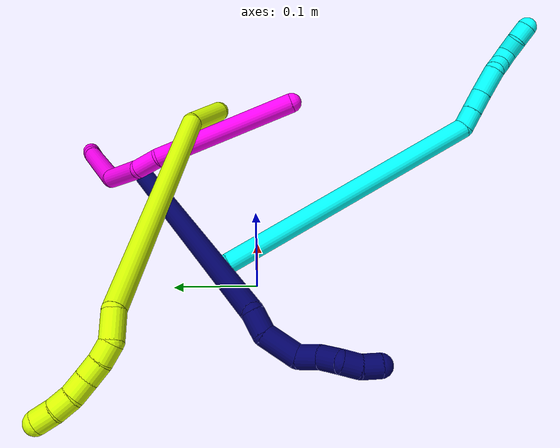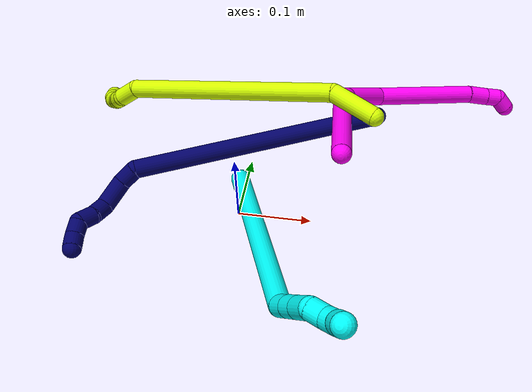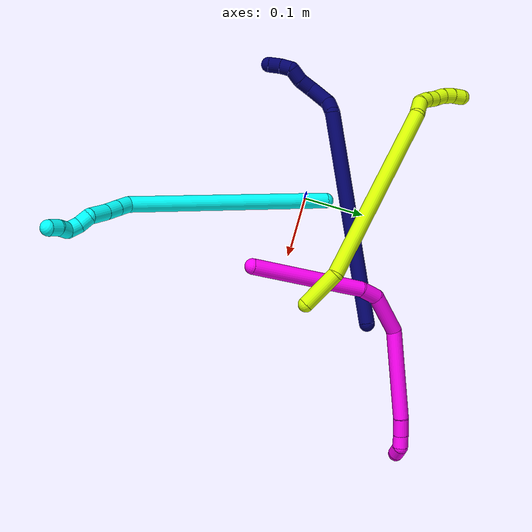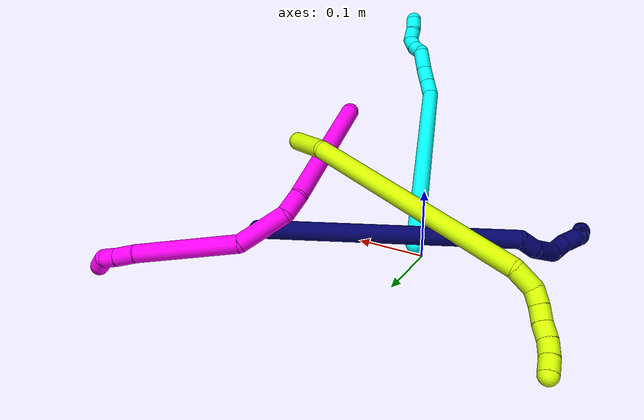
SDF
<sdf version="1.7">
 <world name="default">
  <model name="photoneo_s_sensor">
   <static>1</static>
   <pose>0 0 2 1.57079 1.57079 3.14159</pose>
   <link name="link">
    <inertial><mass>0.1</mass></inertial>
    <sensor name="sensor" type="depth">
     <update_rate>30</update_rate>
     <camera>
      <horizontal_fov>1.22</horizontal_fov>
      <image><width>1920</width><height>1200</height><format>B8G8R8</format></image>
      <clip><near>0.1</near><far>4</far></clip>
      <depth_camera><output>points</output></depth_camera>
     </camera>
     <plugin name="camera_plugin" filename="libgazebo_ros_depth_camera.so">
      <baseline>0.2</baseline>
      <alwaysOn>1</alwaysOn>
      <updateRate>0.0</updateRate>
      <cameraName>camera_ir</cameraName>
      <imageTopicName>/camera/color/image_raw</imageTopicName>
      <cameraInfoTopicName>/camera/color/camera_info</cameraInfoTopicName>
      <depthImageTopicName>/camera/depth/image_raw</depthImageTopicName>
      <depthImageCameraInfoTopicName>/camera/depth/camera_info</depthImageCameraInfoTopicName>
      <pointCloudTopicName>/camera/depth/points</pointCloudTopicName>
      <frameName>fr_optical</frameName>
      <pointCloudCutoff>0.1</pointCloudCutoff>
      <pointCloudCutoffMax>2.0</pointCloudCutoffMax>
      <distortionK1>0</distortionK1>
      <distortionK2>0</distortionK2>
      <distortionK3>0</distortionK3>
      <distortionT1>0</distortionT1>
      <distortionT2>0</distortionT2>
      <CxPrime>0</CxPrime>
      <Cx>0</Cx>
      <Cy>0</Cy>
      <focalLength>0</focalLength>
      <hackBaseline>0</hackBaseline>
     </plugin>
    </sensor>
   </link>
  </model>
  <model name="bin">
   <static>1</static>
   <link name="bottom">
    <collision name="collision-bottom">
     <pose>0 0 -0.01 0 -0 0</pose>
     <geometry><box><size>0.8 0.6 0.02</size></box></geometry>
     <surface>
      <friction><ode><mu>100</mu><mu2>100</mu2></ode></friction>
      <contact><collide_bitmask>65535</collide_bitmask></contact>
     </surface>
    </collision>
   </link>
   <link name="west_wall">
    <collision name="collision-west_wall">
     <pose>-0.41 0 0.1 0 -0 0</pose>
     <geometry><box><size>0.02 0.6 0.2</size></box></geometry>
     <surface>
      <friction><ode><mu>100</mu><mu2>100</mu2></ode></friction>
      <contact><collide_bitmask>65535</collide_bitmask></contact>
     </surface>
    </collision>
   </link>
   <link name="east_wall">
    <collision name="collision-east_wall">
     <pose>0.41 0 0.1 0 -0 0</pose>
     <geometry><box><size>0.02 0.6 0.2</size></box></geometry>
     <surface>
      <friction><ode><mu>100</mu><mu2>100</mu2></ode></friction>
      <contact><collide_bitmask>65535</collide_bitmask></contact>
     </surface>
    </collision>
   </link>
   <link name="south_wall">
    <collision name="collision-south_wall">
     <pose>0 -0.31 0.1 0 -0 0</pose>
     <geometry><box><size>0.8 0.02 0.2</size></box></geometry>
     <surface>
      <friction><ode><mu>100</mu><mu2>100</mu2></ode></friction>
      <contact><collide_bitmask>65535</collide_bitmask></contact>
     </surface>
    </collision>
   </link>
   <link name="north_wall">
    <collision name="collision-north_wall">
     <pose>0 0.31 0.1 0 -0 0</pose>
     <geometry><box><size>0.8 0.02 0.2</size></box></geometry>
     <surface>
      <friction><ode><mu>100</mu><mu2>100</mu2></ode></friction>
      <contact><collide_bitmask>65535</collide_bitmask></contact>
     </surface>
    </collision>
   </link>
  </model>
  <model name="3">
   <static>0</static>
   <link name="3">
    <collision name="collision-cylinder-e_1_1_4">
     <pose>0.025143 -0.110605 0.123597 0.729982 0.150443 0.057579</pose>
     <geometry><cylinder><radius>0.0125</radius><length>0.335511</length></cylinder></geometry>
     <surface>
      <friction><ode><mu>1.16</mu><mu2>1.16</mu2><slip1>0</slip1><slip2>0</slip2></ode></friction>
      <contact><ode><kp>1e+06</kp><kd>1</kd><max_vel>0</max_vel><min_depth>0.001</min_depth></ode></contact>
     </surface>
    </collision>
    <visual name="visual-cylinder-e_1_1_4">
     <pose>0.025143 -0.110605 0.123597 0.729982 0.150443 0.057579</pose>
     <geometry><cylinder><radius>0.0125</radius><length>0.335511</length></cylinder></geometry>
     <material><ambient>0.003922 1 0.996078 1</ambient></material>
    </visual>
    <collision name="collision-cylinder-e_2_4_5">
     <pose>0.057406 -0.225485 0.255944 0.45443 0.63135 0.150737</pose>
     <geometry><cylinder><radius>0.0125</radius><length>0.024128</length></cylinder></geometry>
     <surface>
      <friction><ode><mu>1.16</mu><mu2>1.16</mu2><slip1>0</slip1><slip2>0</slip2></ode></friction>
      <contact><ode><kp>1e+06</kp><kd>1</kd><max_vel>0</max_vel><min_depth>0.001</min_depth></ode></contact>
     </surface>
    </collision>
    <visual name="visual-cylinder-e_2_4_5">
     <pose>0.057406 -0.225485 0.255944 0.45443 0.63135 0.150737</pose>
     <geometry><cylinder><radius>0.0125</radius><length>0.024128</length></cylinder></geometry>
     <material><ambient>0.003922 1 0.996078 1</ambient></material>
    </visual>
    <collision name="collision-cylinder-e_3_5_6">
     <pose>0.071906 -0.23421 0.273795 0.454804 0.629581 0.150415</pose>
     <geometry><cylinder><radius>0.0125</radius><length>0.025065</length></cylinder></geometry>
     <surface>
      <friction><ode><mu>1.16</mu><mu2>1.16</mu2><slip1>0</slip1><slip2>0</slip2></ode></friction>
      <contact><ode><kp>1e+06</kp><kd>1</kd><max_vel>0</max_vel><min_depth>0.001</min_depth></ode></contact>
     </surface>
    </collision>
    <visual name="visual-cylinder-e_3_5_6">
     <pose>0.071906 -0.23421 0.273795 0.454804 0.629581 0.150415</pose>
     <geometry><cylinder><radius>0.0125</radius><length>0.025065</length></cylinder></geometry>
     <material><ambient>0.003922 1 0.996078 1</ambient></material>
    </visual>
    <collision name="collision-cylinder-e_4_6_7">
     <pose>0.088704 -0.244128 0.296032 0.394425 0.584671 0.120124</pose>
     <geometry><cylinder><radius>0.0125</radius><length>0.03413</length></cylinder></geometry>
     <surface>
      <friction><ode><mu>1.16</mu><mu2>1.16</mu2><slip1>0</slip1><slip2>0</slip2></ode></friction>
      <contact><ode><kp>1e+06</kp><kd>1</kd><max_vel>0</max_vel><min_depth>0.001</min_depth></ode></contact>
     </surface>
    </collision>
    <visual name="visual-cylinder-e_4_6_7">
     <pose>0.088704 -0.244128 0.296032 0.394425 0.584671 0.120124</pose>
     <geometry><cylinder><radius>0.0125</radius><length>0.03413</length></cylinder></geometry>
     <material><ambient>0.003922 1 0.996078 1</ambient></material>
    </visual>
    <collision name="collision-cylinder-e_5_7_8">
     <pose>0.10378 -0.257946 0.311696 1.27704 0.575356 0.432376</pose>
     <geometry><cylinder><radius>0.0125</radius><length>0.020794</length></cylinder></geometry>
     <surface>
      <friction><ode><mu>1.16</mu><mu2>1.16</mu2><slip1>0</slip1><slip2>0</slip2></ode></friction>
      <contact><ode><kp>1e+06</kp><kd>1</kd><max_vel>0</max_vel><min_depth>0.001</min_depth></ode></contact>
     </surface>
    </collision>
    <visual name="visual-cylinder-e_5_7_8">
     <pose>0.10378 -0.257946 0.311696 1.27704 0.575356 0.432376</pose>
     <geometry><cylinder><radius>0.0125</radius><length>0.020794</length></cylinder></geometry>
     <material><ambient>0.003922 1 0.996078 1</ambient></material>
    </visual>
    <collision name="collision-cylinder-e_6_8_9">
     <pose>0.11503 -0.272443 0.319876 0.827204 0.590055 0.265207</pose>
     <geometry><cylinder><radius>0.0125</radius><length>0.020106</length></cylinder></geometry>
     <surface>
      <friction><ode><mu>1.16</mu><mu2>1.16</mu2><slip1>0</slip1><slip2>0</slip2></ode></friction>
      <contact><ode><kp>1e+06</kp><kd>1</kd><max_vel>0</max_vel><min_depth>0.001</min_depth></ode></contact>
     </surface>
    </collision>
    <visual name="visual-cylinder-e_6_8_9">
     <pose>0.11503 -0.272443 0.319876 0.827204 0.590055 0.265207</pose>
     <geometry><cylinder><radius>0.0125</radius><length>0.020106</length></cylinder></geometry>
     <material><ambient>0.003922 1 0.996078 1</ambient></material>
    </visual>
    <collision name="collision-cylinder-e_7_9_10">
     <pose>0.123594 -0.279083 0.335159 0.051059 0.298909 0.00769</pose>
     <geometry><cylinder><radius>0.0125</radius><length>0.020176</length></cylinder></geometry>
     <surface>
      <friction><ode><mu>1.16</mu><mu2>1.16</mu2><slip1>0</slip1><slip2>0</slip2></ode></friction>
      <contact><ode><kp>1e+06</kp><kd>1</kd><max_vel>0</max_vel><min_depth>0.001</min_depth></ode></contact>
     </surface>
    </collision>
    <visual name="visual-cylinder-e_7_9_10">
     <pose>0.123594 -0.279083 0.335159 0.051059 0.298909 0.00769</pose>
     <geometry><cylinder><radius>0.0125</radius><length>0.020176</length></cylinder></geometry>
     <material><ambient>0.003922 1 0.996078 1</ambient></material>
    </visual>
    <collision name="collision-cylinder-e_8_10_2">
     <pose>0.130586 -0.282511 0.353512 0.324551 0.411798 0.06836</pose>
     <geometry><cylinder><radius>0.0125</radius><length>0.02009</length></cylinder></geometry>
     <surface>
      <friction><ode><mu>1.16</mu><mu2>1.16</mu2><slip1>0</slip1><slip2>0</slip2></ode></friction>
      <contact><ode><kp>1e+06</kp><kd>1</kd><max_vel>0</max_vel><min_depth>0.001</min_depth></ode></contact>
     </surface>
    </collision>
    <visual name="visual-cylinder-e_8_10_2">
     <pose>0.130586 -0.282511 0.353512 0.324551 0.411798 0.06836</pose>
     <geometry><cylinder><radius>0.0125</radius><length>0.02009</length></cylinder></geometry>
     <material><ambient>0.003922 1 0.996078 1</ambient></material>
    </visual>
    <collision name="collision-sphere-2">
     <pose>0.134606 -0.285446 0.362236 0 -0 0</pose>
     <geometry><sphere><radius>0.0125</radius></sphere></geometry>
     <surface>
      <friction><ode><mu>1.16</mu><mu2>1.16</mu2><slip1>0</slip1><slip2>0</slip2></ode></friction>
      <contact><ode><kp>1e+06</kp><kd>1</kd><max_vel>0</max_vel><min_depth>0.001</min_depth></ode></contact>
     </surface>
    </collision>
    <visual name="visual-sphere-2">
     <pose>0.134606 -0.285446 0.362236 0 -0 0</pose>
     <geometry><sphere><radius>0.0125</radius></sphere></geometry>
     <material><ambient>0.003922 1 0.996078 1</ambient></material>
    </visual>
    <collision name="collision-sphere-10">
     <pose>0.126565 -0.279575 0.344787 0 -0 0</pose>
     <geometry><sphere><radius>0.0125</radius></sphere></geometry>
     <surface>
      <friction><ode><mu>1.16</mu><mu2>1.16</mu2><slip1>0</slip1><slip2>0</slip2></ode></friction>
      <contact><ode><kp>1e+06</kp><kd>1</kd><max_vel>0</max_vel><min_depth>0.001</min_depth></ode></contact>
     </surface>
    </collision>
    <visual name="visual-sphere-10">
     <pose>0.126565 -0.279575 0.344787 0 -0 0</pose>
     <geometry><sphere><radius>0.0125</radius></sphere></geometry>
     <material><ambient>0.003922 1 0.996078 1</ambient></material>
    </visual>
    <collision name="collision-sphere-9">
     <pose>0.120624 -0.278591 0.325531 0 -0 0</pose>
     <geometry><sphere><radius>0.0125</radius></sphere></geometry>
     <surface>
      <friction><ode><mu>1.16</mu><mu2>1.16</mu2><slip1>0</slip1><slip2>0</slip2></ode></friction>
      <contact><ode><kp>1e+06</kp><kd>1</kd><max_vel>0</max_vel><min_depth>0.001</min_depth></ode></contact>
     </surface>
    </collision>
    <visual name="visual-sphere-9">
     <pose>0.120624 -0.278591 0.325531 0 -0 0</pose>
     <geometry><sphere><radius>0.0125</radius></sphere></geometry>
     <material><ambient>0.003922 1 0.996078 1</ambient></material>
    </visual>
    <collision name="collision-sphere-4">
     <pose>0.050285 -0.22121 0.247194 0 -0 0</pose>
     <geometry><sphere><radius>0.0125</radius></sphere></geometry>
     <surface>
      <friction><ode><mu>1.16</mu><mu2>1.16</mu2><slip1>0</slip1><slip2>0</slip2></ode></friction>
      <contact><ode><kp>1e+06</kp><kd>1</kd><max_vel>0</max_vel><min_depth>0.001</min_depth></ode></contact>
     </surface>
    </collision>
    <visual name="visual-sphere-4">
     <pose>0.050285 -0.22121 0.247194 0 -0 0</pose>
     <geometry><sphere><radius>0.0125</radius></sphere></geometry>
     <material><ambient>0.003922 1 0.996078 1</ambient></material>
    </visual>
    <collision name="collision-sphere-1">
     <geometry><sphere><radius>0.0125</radius></sphere></geometry>
     <surface>
      <friction><ode><mu>1.16</mu><mu2>1.16</mu2><slip1>0</slip1><slip2>0</slip2></ode></friction>
      <contact><ode><kp>1e+06</kp><kd>1</kd><max_vel>0</max_vel><min_depth>0.001</min_depth></ode></contact>
     </surface>
    </collision>
    <visual name="visual-sphere-1">
     <geometry><sphere><radius>0.0125</radius></sphere></geometry>
     <material><ambient>0.003922 1 0.996078 1</ambient></material>
    </visual>
    <collision name="collision-sphere-8">
     <pose>0.109437 -0.266295 0.314222 0 -0 0</pose>
     <geometry><sphere><radius>0.0125</radius></sphere></geometry>
     <surface>
      <friction><ode><mu>1.16</mu><mu2>1.16</mu2><slip1>0</slip1><slip2>0</slip2></ode></friction>
      <contact><ode><kp>1e+06</kp><kd>1</kd><max_vel>0</max_vel><min_depth>0.001</min_depth></ode></contact>
     </surface>
    </collision>
    <visual name="visual-sphere-8">
     <pose>0.109437 -0.266295 0.314222 0 -0 0</pose>
     <geometry><sphere><radius>0.0125</radius></sphere></geometry>
     <material><ambient>0.003922 1 0.996078 1</ambient></material>
    </visual>
    <collision name="collision-sphere-5">
     <pose>0.064526 -0.22976 0.264694 0 -0 0</pose>
     <geometry><sphere><radius>0.0125</radius></sphere></geometry>
     <surface>
      <friction><ode><mu>1.16</mu><mu2>1.16</mu2><slip1>0</slip1><slip2>0</slip2></ode></friction>
      <contact><ode><kp>1e+06</kp><kd>1</kd><max_vel>0</max_vel><min_depth>0.001</min_depth></ode></contact>
     </surface>
    </collision>
    <visual name="visual-sphere-5">
     <pose>0.064526 -0.22976 0.264694 0 -0 0</pose>
     <geometry><sphere><radius>0.0125</radius></sphere></geometry>
     <material><ambient>0.003922 1 0.996078 1</ambient></material>
    </visual>
    <collision name="collision-sphere-6">
     <pose>0.079285 -0.23866 0.282895 0 -0 0</pose>
     <geometry><sphere><radius>0.0125</radius></sphere></geometry>
     <surface>
      <friction><ode><mu>1.16</mu><mu2>1.16</mu2><slip1>0</slip1><slip2>0</slip2></ode></friction>
      <contact><ode><kp>1e+06</kp><kd>1</kd><max_vel>0</max_vel><min_depth>0.001</min_depth></ode></contact>
     </surface>
    </collision>
    <visual name="visual-sphere-6">
     <pose>0.079285 -0.23866 0.282895 0 -0 0</pose>
     <geometry><sphere><radius>0.0125</radius></sphere></geometry>
     <material><ambient>0.003922 1 0.996078 1</ambient></material>
    </visual>
    <collision name="collision-sphere-7">
     <pose>0.098122 -0.249596 0.30917 0 -0 0</pose>
     <geometry><sphere><radius>0.0125</radius></sphere></geometry>
     <surface>
      <friction><ode><mu>1.16</mu><mu2>1.16</mu2><slip1>0</slip1><slip2>0</slip2></ode></friction>
      <contact><ode><kp>1e+06</kp><kd>1</kd><max_vel>0</max_vel><min_depth>0.001</min_depth></ode></contact>
     </surface>
    </collision>
    <visual name="visual-sphere-7">
     <pose>0.098122 -0.249596 0.30917 0 -0 0</pose>
     <geometry><sphere><radius>0.0125</radius></sphere></geometry>
     <material><ambient>0.003922 1 0.996078 1</ambient></material>
    </visual>
    <inertial>
     <pose>0.048477 -0.1578 0.182774 0 -0 0</pose>
     <mass>0.5</mass>
     <inertia>
      <ixx>0.003324</ixx>
      <ixy>0</ixy>
      <ixz>0</ixz>
      <iyy>0.002542</iyy>
      <iyz>0</iyz>
      <izz>0.001636</izz>
     </inertia>
    </inertial>
   </link>
   <pose>-0.002582 0.033687 0.034733 0.480787 -0.573267 0.418352</pose>
  </model>
  <model name="7">
   <static>0</static>
   <link name="7">
    <collision name="collision-cylinder-e_1_1_4">
     <pose>-0.134706 -0.003216 0.109518 0.029353 -0.887958 -0.013963</pose>
     <geometry><cylinder><radius>0.0125</radius><length>0.347277</length></cylinder></geometry>
     <surface>
      <friction><ode><mu>1.16</mu><mu2>1.16</mu2><slip1>0</slip1><slip2>0</slip2></ode></friction>
      <contact><ode><kp>1e+06</kp><kd>1</kd><max_vel>0</max_vel><min_depth>0.001</min_depth></ode></contact>
     </surface>
    </collision>
    <visual name="visual-cylinder-e_1_1_4">
     <pose>-0.134706 -0.003216 0.109518 0.029353 -0.887958 -0.013963</pose>
     <geometry><cylinder><radius>0.0125</radius><length>0.347277</length></cylinder></geometry>
     <material><ambient>0.003922 0 0.403922 1</ambient></material>
    </visual>
    <collision name="collision-cylinder-e_2_4_5">
     <pose>-0.28063 -0.011701 0.221024 1.2101 -1.10549 -0.806493</pose>
     <geometry><cylinder><radius>0.0125</radius><length>0.025105</length></cylinder></geometry>
     <surface>
      <friction><ode><mu>1.16</mu><mu2>1.16</mu2><slip1>0</slip1><slip2>0</slip2></ode></friction>
      <contact><ode><kp>1e+06</kp><kd>1</kd><max_vel>0</max_vel><min_depth>0.001</min_depth></ode></contact>
     </surface>
    </collision>
    <visual name="visual-cylinder-e_2_4_5">
     <pose>-0.28063 -0.011701 0.221024 1.2101 -1.10549 -0.806493</pose>
     <geometry><cylinder><radius>0.0125</radius><length>0.025105</length></cylinder></geometry>
     <material><ambient>0.003922 0 0.403922 1</ambient></material>
    </visual>
    <collision name="collision-cylinder-e_3_5_6">
     <pose>-0.30355 -0.030777 0.231588 1.01495 -0.624002 -0.354917</pose>
     <geometry><cylinder><radius>0.0125</radius><length>0.040054</length></cylinder></geometry>
     <surface>
      <friction><ode><mu>1.16</mu><mu2>1.16</mu2><slip1>0</slip1><slip2>0</slip2></ode></friction>
      <contact><ode><kp>1e+06</kp><kd>1</kd><max_vel>0</max_vel><min_depth>0.001</min_depth></ode></contact>
     </surface>
    </collision>
    <visual name="visual-cylinder-e_3_5_6">
     <pose>-0.30355 -0.030777 0.231588 1.01495 -0.624002 -0.354917</pose>
     <geometry><cylinder><radius>0.0125</radius><length>0.040054</length></cylinder></geometry>
     <material><ambient>0.003922 0 0.403922 1</ambient></material>
    </visual>
    <collision name="collision-cylinder-e_4_6_7">
     <pose>-0.317336 -0.050511 0.250394 0.525213 -0.174513 -0.047022</pose>
     <geometry><cylinder><radius>0.0125</radius><length>0.024011</length></cylinder></geometry>
     <surface>
      <friction><ode><mu>1.16</mu><mu2>1.16</mu2><slip1>0</slip1><slip2>0</slip2></ode></friction>
      <contact><ode><kp>1e+06</kp><kd>1</kd><max_vel>0</max_vel><min_depth>0.001</min_depth></ode></contact>
     </surface>
    </collision>
    <visual name="visual-cylinder-e_4_6_7">
     <pose>-0.317336 -0.050511 0.250394 0.525213 -0.174513 -0.047022</pose>
     <geometry><cylinder><radius>0.0125</radius><length>0.024011</length></cylinder></geometry>
     <material><ambient>0.003922 0 0.403922 1</ambient></material>
    </visual>
    <collision name="collision-cylinder-e_5_7_8">
     <pose>-0.323929 -0.059925 0.270611 0.33581 -0.402897 -0.069203</pose>
     <geometry><cylinder><radius>0.0125</radius><length>0.022997</length></cylinder></geometry>
     <surface>
      <friction><ode><mu>1.16</mu><mu2>1.16</mu2><slip1>0</slip1><slip2>0</slip2></ode></friction>
      <contact><ode><kp>1e+06</kp><kd>1</kd><max_vel>0</max_vel><min_depth>0.001</min_depth></ode></contact>
     </surface>
    </collision>
    <visual name="visual-cylinder-e_5_7_8">
     <pose>-0.323929 -0.059925 0.270611 0.33581 -0.402897 -0.069203</pose>
     <geometry><cylinder><radius>0.0125</radius><length>0.022997</length></cylinder></geometry>
     <material><ambient>0.003922 0 0.403922 1</ambient></material>
    </visual>
    <collision name="collision-cylinder-e_6_8_9">
     <pose>-0.330722 -0.072216 0.284769 1.12842 -0.230276 -0.146112</pose>
     <geometry><cylinder><radius>0.0125</radius><length>0.020014</length></cylinder></geometry>
     <surface>
      <friction><ode><mu>1.16</mu><mu2>1.16</mu2><slip1>0</slip1><slip2>0</slip2></ode></friction>
      <contact><ode><kp>1e+06</kp><kd>1</kd><max_vel>0</max_vel><min_depth>0.001</min_depth></ode></contact>
     </surface>
    </collision>
    <visual name="visual-cylinder-e_6_8_9">
     <pose>-0.330722 -0.072216 0.284769 1.12842 -0.230276 -0.146112</pose>
     <geometry><cylinder><radius>0.0125</radius><length>0.020014</length></cylinder></geometry>
     <material><ambient>0.003922 0 0.403922 1</ambient></material>
    </visual>
    <collision name="collision-cylinder-e_7_9_2">
     <pose>-0.332421 -0.089841 0.294169 1.03559 0.056983 0.032466</pose>
     <geometry><cylinder><radius>0.0125</radius><length>0.020541</length></cylinder></geometry>
     <surface>
      <friction><ode><mu>1.16</mu><mu2>1.16</mu2><slip1>0</slip1><slip2>0</slip2></ode></friction>
      <contact><ode><kp>1e+06</kp><kd>1</kd><max_vel>0</max_vel><min_depth>0.001</min_depth></ode></contact>
     </surface>
    </collision>
    <visual name="visual-cylinder-e_7_9_2">
     <pose>-0.332421 -0.089841 0.294169 1.03559 0.056983 0.032466</pose>
     <geometry><cylinder><radius>0.0125</radius><length>0.020541</length></cylinder></geometry>
     <material><ambient>0.003922 0 0.403922 1</ambient></material>
    </visual>
    <collision name="collision-sphere-2">
     <pose>-0.331836 -0.098661 0.299399 0 -0 0</pose>
     <geometry><sphere><radius>0.0125</radius></sphere></geometry>
     <surface>
      <friction><ode><mu>1.16</mu><mu2>1.16</mu2><slip1>0</slip1><slip2>0</slip2></ode></friction>
      <contact><ode><kp>1e+06</kp><kd>1</kd><max_vel>0</max_vel><min_depth>0.001</min_depth></ode></contact>
     </surface>
    </collision>
    <visual name="visual-sphere-2">
     <pose>-0.331836 -0.098661 0.299399 0 -0 0</pose>
     <geometry><sphere><radius>0.0125</radius></sphere></geometry>
     <material><ambient>0.003922 0 0.403922 1</ambient></material>
    </visual>
    <collision name="collision-sphere-9">
     <pose>-0.333006 -0.081021 0.288939 0 -0 0</pose>
     <geometry><sphere><radius>0.0125</radius></sphere></geometry>
     <surface>
      <friction><ode><mu>1.16</mu><mu2>1.16</mu2><slip1>0</slip1><slip2>0</slip2></ode></friction>
      <contact><ode><kp>1e+06</kp><kd>1</kd><max_vel>0</max_vel><min_depth>0.001</min_depth></ode></contact>
     </surface>
    </collision>
    <visual name="visual-sphere-9">
     <pose>-0.333006 -0.081021 0.288939 0 -0 0</pose>
     <geometry><sphere><radius>0.0125</radius></sphere></geometry>
     <material><ambient>0.003922 0 0.403922 1</ambient></material>
    </visual>
    <collision name="collision-sphere-4">
     <pose>-0.269412 -0.006431 0.219037 0 -0 0</pose>
     <geometry><sphere><radius>0.0125</radius></sphere></geometry>
     <surface>
      <friction><ode><mu>1.16</mu><mu2>1.16</mu2><slip1>0</slip1><slip2>0</slip2></ode></friction>
      <contact><ode><kp>1e+06</kp><kd>1</kd><max_vel>0</max_vel><min_depth>0.001</min_depth></ode></contact>
     </surface>
    </collision>
    <visual name="visual-sphere-4">
     <pose>-0.269412 -0.006431 0.219037 0 -0 0</pose>
     <geometry><sphere><radius>0.0125</radius></sphere></geometry>
     <material><ambient>0.003922 0 0.403922 1</ambient></material>
    </visual>
    <collision name="collision-sphere-1">
     <geometry><sphere><radius>0.0125</radius></sphere></geometry>
     <surface>
      <friction><ode><mu>1.16</mu><mu2>1.16</mu2><slip1>0</slip1><slip2>0</slip2></ode></friction>
      <contact><ode><kp>1e+06</kp><kd>1</kd><max_vel>0</max_vel><min_depth>0.001</min_depth></ode></contact>
     </surface>
    </collision>
    <visual name="visual-sphere-1">
     <geometry><sphere><radius>0.0125</radius></sphere></geometry>
     <material><ambient>0.003922 0 0.403922 1</ambient></material>
    </visual>
    <collision name="collision-sphere-8">
     <pose>-0.328438 -0.063411 0.280598 0 -0 0</pose>
     <geometry><sphere><radius>0.0125</radius></sphere></geometry>
     <surface>
      <friction><ode><mu>1.16</mu><mu2>1.16</mu2><slip1>0</slip1><slip2>0</slip2></ode></friction>
      <contact><ode><kp>1e+06</kp><kd>1</kd><max_vel>0</max_vel><min_depth>0.001</min_depth></ode></contact>
     </surface>
    </collision>
    <visual name="visual-sphere-8">
     <pose>-0.328438 -0.063411 0.280598 0 -0 0</pose>
     <geometry><sphere><radius>0.0125</radius></sphere></geometry>
     <material><ambient>0.003922 0 0.403922 1</ambient></material>
    </visual>
    <collision name="collision-sphere-5">
     <pose>-0.291849 -0.016971 0.223012 0 -0 0</pose>
     <geometry><sphere><radius>0.0125</radius></sphere></geometry>
     <surface>
      <friction><ode><mu>1.16</mu><mu2>1.16</mu2><slip1>0</slip1><slip2>0</slip2></ode></friction>
      <contact><ode><kp>1e+06</kp><kd>1</kd><max_vel>0</max_vel><min_depth>0.001</min_depth></ode></contact>
     </surface>
    </collision>
    <visual name="visual-sphere-5">
     <pose>-0.291849 -0.016971 0.223012 0 -0 0</pose>
     <geometry><sphere><radius>0.0125</radius></sphere></geometry>
     <material><ambient>0.003922 0 0.403922 1</ambient></material>
    </visual>
    <collision name="collision-sphere-6">
     <pose>-0.315252 -0.044583 0.240164 0 -0 0</pose>
     <geometry><sphere><radius>0.0125</radius></sphere></geometry>
     <surface>
      <friction><ode><mu>1.16</mu><mu2>1.16</mu2><slip1>0</slip1><slip2>0</slip2></ode></friction>
      <contact><ode><kp>1e+06</kp><kd>1</kd><max_vel>0</max_vel><min_depth>0.001</min_depth></ode></contact>
     </surface>
    </collision>
    <visual name="visual-sphere-6">
     <pose>-0.315252 -0.044583 0.240164 0 -0 0</pose>
     <geometry><sphere><radius>0.0125</radius></sphere></geometry>
     <material><ambient>0.003922 0 0.403922 1</ambient></material>
    </visual>
    <collision name="collision-sphere-7">
     <pose>-0.319421 -0.05644 0.260624 0 -0 0</pose>
     <geometry><sphere><radius>0.0125</radius></sphere></geometry>
     <surface>
      <friction><ode><mu>1.16</mu><mu2>1.16</mu2><slip1>0</slip1><slip2>0</slip2></ode></friction>
      <contact><ode><kp>1e+06</kp><kd>1</kd><max_vel>0</max_vel><min_depth>0.001</min_depth></ode></contact>
     </surface>
    </collision>
    <visual name="visual-sphere-7">
     <pose>-0.319421 -0.05644 0.260624 0 -0 0</pose>
     <geometry><sphere><radius>0.0125</radius></sphere></geometry>
     <material><ambient>0.003922 0 0.403922 1</ambient></material>
    </visual>
    <inertial>
     <pose>-0.189001 -0.01705 0.153671 0 -0 0</pose>
     <mass>0.5</mass>
     <inertia>
      <ixx>0.002163</ixx>
      <ixy>0</ixy>
      <ixz>0</ixz>
      <iyy>0.003473</iyy>
      <iyz>0</iyz>
      <izz>0.002824</izz>
     </inertia>
    </inertial>
   </link>
   <pose>0.173761 0.152528 0.066517 0.661231 -0.574103 0.028426</pose>
  </model>
  <model name="10">
   <static>0</static>
   <link name="10">
    <collision name="collision-cylinder-e_1_1_4">
     <pose>-0.005385 -0.005528 0.09235 0.059785 -0.058143 -0.001739</pose>
     <geometry><cylinder><radius>0.0125</radius><length>0.185344</length></cylinder></geometry>
     <surface>
      <friction><ode><mu>1.16</mu><mu2>1.16</mu2><slip1>0</slip1><slip2>0</slip2></ode></friction>
      <contact><ode><kp>1e+06</kp><kd>1</kd><max_vel>0</max_vel><min_depth>0.001</min_depth></ode></contact>
     </surface>
    </collision>
    <visual name="visual-cylinder-e_1_1_4">
     <pose>-0.005385 -0.005528 0.09235 0.059785 -0.058143 -0.001739</pose>
     <geometry><cylinder><radius>0.0125</radius><length>0.185344</length></cylinder></geometry>
     <material><ambient>1 0 0.964706 1</ambient></material>
    </visual>
    <collision name="collision-cylinder-e_2_4_5">
     <pose>-0.009554 -0.00778 0.200353 -0.206255 0.075904 -0.007859</pose>
     <geometry><cylinder><radius>0.0125</radius><length>0.032076</length></cylinder></geometry>
     <surface>
      <friction><ode><mu>1.16</mu><mu2>1.16</mu2><slip1>0</slip1><slip2>0</slip2></ode></friction>
      <contact><ode><kp>1e+06</kp><kd>1</kd><max_vel>0</max_vel><min_depth>0.001</min_depth></ode></contact>
     </surface>
    </collision>
    <visual name="visual-cylinder-e_2_4_5">
     <pose>-0.009554 -0.00778 0.200353 -0.206255 0.075904 -0.007859</pose>
     <geometry><cylinder><radius>0.0125</radius><length>0.032076</length></cylinder></geometry>
     <material><ambient>1 0 0.964706 1</ambient></material>
    </visual>
    <collision name="collision-cylinder-e_3_5_6">
     <pose>0.00916 0.009598 0.242628 -0.487188 0.526197 -0.133679</pose>
     <geometry><cylinder><radius>0.0125</radius><length>0.06968</length></cylinder></geometry>
     <surface>
      <friction><ode><mu>1.16</mu><mu2>1.16</mu2><slip1>0</slip1><slip2>0</slip2></ode></friction>
      <contact><ode><kp>1e+06</kp><kd>1</kd><max_vel>0</max_vel><min_depth>0.001</min_depth></ode></contact>
     </surface>
    </collision>
    <visual name="visual-cylinder-e_3_5_6">
     <pose>0.00916 0.009598 0.242628 -0.487188 0.526197 -0.133679</pose>
     <geometry><cylinder><radius>0.0125</radius><length>0.06968</length></cylinder></geometry>
     <material><ambient>1 0 0.964706 1</ambient></material>
    </visual>
    <collision name="collision-cylinder-e_4_6_7">
     <pose>0.087955 0.049528 0.296686 -0.755166 1.01963 -0.436443</pose>
     <geometry><cylinder><radius>0.0125</radius><length>0.143901</length></cylinder></geometry>
     <surface>
      <friction><ode><mu>1.16</mu><mu2>1.16</mu2><slip1>0</slip1><slip2>0</slip2></ode></friction>
      <contact><ode><kp>1e+06</kp><kd>1</kd><max_vel>0</max_vel><min_depth>0.001</min_depth></ode></contact>
     </surface>
    </collision>
    <visual name="visual-cylinder-e_4_6_7">
     <pose>0.087955 0.049528 0.296686 -0.755166 1.01963 -0.436443</pose>
     <geometry><cylinder><radius>0.0125</radius><length>0.143901</length></cylinder></geometry>
     <material><ambient>1 0 0.964706 1</ambient></material>
    </visual>
    <collision name="collision-cylinder-e_5_7_8">
     <pose>0.160744 0.082386 0.329234 -0.942303 0.923204 -0.496364</pose>
     <geometry><cylinder><radius>0.0125</radius><length>0.028823</length></cylinder></geometry>
     <surface>
      <friction><ode><mu>1.16</mu><mu2>1.16</mu2><slip1>0</slip1><slip2>0</slip2></ode></friction>
      <contact><ode><kp>1e+06</kp><kd>1</kd><max_vel>0</max_vel><min_depth>0.001</min_depth></ode></contact>
     </surface>
    </collision>
    <visual name="visual-cylinder-e_5_7_8">
     <pose>0.160744 0.082386 0.329234 -0.942303 0.923204 -0.496364</pose>
     <geometry><cylinder><radius>0.0125</radius><length>0.028823</length></cylinder></geometry>
     <material><ambient>1 0 0.964706 1</ambient></material>
    </visual>
    <collision name="collision-cylinder-e_6_8_9">
     <pose>0.180716 0.093946 0.337299 -0.99271 1.00325 -0.577424</pose>
     <geometry><cylinder><radius>0.0125</radius><length>0.020109</length></cylinder></geometry>
     <surface>
      <friction><ode><mu>1.16</mu><mu2>1.16</mu2><slip1>0</slip1><slip2>0</slip2></ode></friction>
      <contact><ode><kp>1e+06</kp><kd>1</kd><max_vel>0</max_vel><min_depth>0.001</min_depth></ode></contact>
     </surface>
    </collision>
    <visual name="visual-cylinder-e_6_8_9">
     <pose>0.180716 0.093946 0.337299 -0.99271 1.00325 -0.577424</pose>
     <geometry><cylinder><radius>0.0125</radius><length>0.020109</length></cylinder></geometry>
     <material><ambient>1 0 0.964706 1</ambient></material>
    </visual>
    <collision name="collision-cylinder-e_7_9_2">
     <pose>0.192152 0.107865 0.342177 -1.36866 0.299173 -0.244689</pose>
     <geometry><cylinder><radius>0.0125</radius><length>0.020066</length></cylinder></geometry>
     <surface>
      <friction><ode><mu>1.16</mu><mu2>1.16</mu2><slip1>0</slip1><slip2>0</slip2></ode></friction>
      <contact><ode><kp>1e+06</kp><kd>1</kd><max_vel>0</max_vel><min_depth>0.001</min_depth></ode></contact>
     </surface>
    </collision>
    <visual name="visual-cylinder-e_7_9_2">
     <pose>0.192152 0.107865 0.342177 -1.36866 0.299173 -0.244689</pose>
     <geometry><cylinder><radius>0.0125</radius><length>0.020066</length></cylinder></geometry>
     <material><ambient>1 0 0.964706 1</ambient></material>
    </visual>
    <collision name="collision-sphere-2">
     <pose>0.195109 0.117257 0.344102 0 -0 0</pose>
     <geometry><sphere><radius>0.0125</radius></sphere></geometry>
     <surface>
      <friction><ode><mu>1.16</mu><mu2>1.16</mu2><slip1>0</slip1><slip2>0</slip2></ode></friction>
      <contact><ode><kp>1e+06</kp><kd>1</kd><max_vel>0</max_vel><min_depth>0.001</min_depth></ode></contact>
     </surface>
    </collision>
    <visual name="visual-sphere-2">
     <pose>0.195109 0.117257 0.344102 0 -0 0</pose>
     <geometry><sphere><radius>0.0125</radius></sphere></geometry>
     <material><ambient>1 0 0.964706 1</ambient></material>
    </visual>
    <collision name="collision-sphere-9">
     <pose>0.189195 0.098473 0.340252 0 -0 0</pose>
     <geometry><sphere><radius>0.0125</radius></sphere></geometry>
     <surface>
      <friction><ode><mu>1.16</mu><mu2>1.16</mu2><slip1>0</slip1><slip2>0</slip2></ode></friction>
      <contact><ode><kp>1e+06</kp><kd>1</kd><max_vel>0</max_vel><min_depth>0.001</min_depth></ode></contact>
     </surface>
    </collision>
    <visual name="visual-sphere-9">
     <pose>0.189195 0.098473 0.340252 0 -0 0</pose>
     <geometry><sphere><radius>0.0125</radius></sphere></geometry>
     <material><ambient>1 0 0.964706 1</ambient></material>
    </visual>
    <collision name="collision-sphere-4">
     <pose>-0.01077 -0.011055 0.1847 0 -0 0</pose>
     <geometry><sphere><radius>0.0125</radius></sphere></geometry>
     <surface>
      <friction><ode><mu>1.16</mu><mu2>1.16</mu2><slip1>0</slip1><slip2>0</slip2></ode></friction>
      <contact><ode><kp>1e+06</kp><kd>1</kd><max_vel>0</max_vel><min_depth>0.001</min_depth></ode></contact>
     </surface>
    </collision>
    <visual name="visual-sphere-4">
     <pose>-0.01077 -0.011055 0.1847 0 -0 0</pose>
     <geometry><sphere><radius>0.0125</radius></sphere></geometry>
     <material><ambient>1 0 0.964706 1</ambient></material>
    </visual>
    <collision name="collision-sphere-1">
     <geometry><sphere><radius>0.0125</radius></sphere></geometry>
     <surface>
      <friction><ode><mu>1.16</mu><mu2>1.16</mu2><slip1>0</slip1><slip2>0</slip2></ode></friction>
      <contact><ode><kp>1e+06</kp><kd>1</kd><max_vel>0</max_vel><min_depth>0.001</min_depth></ode></contact>
     </surface>
    </collision>
    <visual name="visual-sphere-1">
     <geometry><sphere><radius>0.0125</radius></sphere></geometry>
     <material><ambient>1 0 0.964706 1</ambient></material>
    </visual>
    <collision name="collision-sphere-8">
     <pose>0.172238 0.089419 0.334346 0 -0 0</pose>
     <geometry><sphere><radius>0.0125</radius></sphere></geometry>
     <surface>
      <friction><ode><mu>1.16</mu><mu2>1.16</mu2><slip1>0</slip1><slip2>0</slip2></ode></friction>
      <contact><ode><kp>1e+06</kp><kd>1</kd><max_vel>0</max_vel><min_depth>0.001</min_depth></ode></contact>
     </surface>
    </collision>
    <visual name="visual-sphere-8">
     <pose>0.172238 0.089419 0.334346 0 -0 0</pose>
     <geometry><sphere><radius>0.0125</radius></sphere></geometry>
     <material><ambient>1 0 0.964706 1</ambient></material>
    </visual>
    <collision name="collision-sphere-5">
     <pose>-0.008338 -0.004505 0.216006 0 -0 0</pose>
     <geometry><sphere><radius>0.0125</radius></sphere></geometry>
     <surface>
      <friction><ode><mu>1.16</mu><mu2>1.16</mu2><slip1>0</slip1><slip2>0</slip2></ode></friction>
      <contact><ode><kp>1e+06</kp><kd>1</kd><max_vel>0</max_vel><min_depth>0.001</min_depth></ode></contact>
     </surface>
    </collision>
    <visual name="visual-sphere-5">
     <pose>-0.008338 -0.004505 0.216006 0 -0 0</pose>
     <geometry><sphere><radius>0.0125</radius></sphere></geometry>
     <material><ambient>1 0 0.964706 1</ambient></material>
    </visual>
    <collision name="collision-sphere-6">
     <pose>0.026659 0.023702 0.26925 0 -0 0</pose>
     <geometry><sphere><radius>0.0125</radius></sphere></geometry>
     <surface>
      <friction><ode><mu>1.16</mu><mu2>1.16</mu2><slip1>0</slip1><slip2>0</slip2></ode></friction>
      <contact><ode><kp>1e+06</kp><kd>1</kd><max_vel>0</max_vel><min_depth>0.001</min_depth></ode></contact>
     </surface>
    </collision>
    <visual name="visual-sphere-6">
     <pose>0.026659 0.023702 0.26925 0 -0 0</pose>
     <geometry><sphere><radius>0.0125</radius></sphere></geometry>
     <material><ambient>1 0 0.964706 1</ambient></material>
    </visual>
    <collision name="collision-sphere-7">
     <pose>0.14925 0.075354 0.324123 0 -0 0</pose>
     <geometry><sphere><radius>0.0125</radius></sphere></geometry>
     <surface>
      <friction><ode><mu>1.16</mu><mu2>1.16</mu2><slip1>0</slip1><slip2>0</slip2></ode></friction>
      <contact><ode><kp>1e+06</kp><kd>1</kd><max_vel>0</max_vel><min_depth>0.001</min_depth></ode></contact>
     </surface>
    </collision>
    <visual name="visual-sphere-7">
     <pose>0.14925 0.075354 0.324123 0 -0 0</pose>
     <geometry><sphere><radius>0.0125</radius></sphere></geometry>
     <material><ambient>1 0 0.964706 1</ambient></material>
    </visual>
    <inertial>
     <pose>0.048227 0.0259 0.212563 0 -0 0</pose>
     <mass>0.5</mass>
     <inertia>
      <ixx>0.000644</ixx>
      <ixy>0</ixy>
      <ixz>0</ixz>
      <iyy>0.00075</iyy>
      <iyz>0</iyz>
      <izz>-0.000254</izz>
     </inertia>
    </inertial>
   </link>
   <pose>0.143091 -0.046377 0.181514 -1.99997 -0.347748 0.174516</pose>
  </model>
  <model name="15">
   <static>0</static>
   <link name="15">
    <collision name="collision-cylinder-e_1_1_4">
     <pose>-0.011467 0.004186 0.029901 -0.139101 -0.362965 0.025565</pose>
     <geometry><cylinder><radius>0.0125</radius><length>0.064593</length></cylinder></geometry>
     <surface>
      <friction><ode><mu>1.16</mu><mu2>1.16</mu2><slip1>0</slip1><slip2>0</slip2></ode></friction>
      <contact><ode><kp>1e+06</kp><kd>1</kd><max_vel>0</max_vel><min_depth>0.001</min_depth></ode></contact>
     </surface>
    </collision>
    <visual name="visual-cylinder-e_1_1_4">
     <pose>-0.011467 0.004186 0.029901 -0.139101 -0.362965 0.025565</pose>
     <geometry><cylinder><radius>0.0125</radius><length>0.064593</length></cylinder></geometry>
     <material><ambient>0.835294 1 0 1</ambient></material>
    </visual>
    <collision name="collision-cylinder-e_2_4_5">
     <pose>-0.118128 0.069972 0.161137 -0.546188 -0.676402 0.196391</pose>
     <geometry><cylinder><radius>0.0125</radius><length>0.304141</length></cylinder></geometry>
     <surface>
      <friction><ode><mu>1.16</mu><mu2>1.16</mu2><slip1>0</slip1><slip2>0</slip2></ode></friction>
      <contact><ode><kp>1e+06</kp><kd>1</kd><max_vel>0</max_vel><min_depth>0.001</min_depth></ode></contact>
     </surface>
    </collision>
    <visual name="visual-cylinder-e_2_4_5">
     <pose>-0.118128 0.069972 0.161137 -0.546188 -0.676402 0.196391</pose>
     <geometry><cylinder><radius>0.0125</radius><length>0.304141</length></cylinder></geometry>
     <material><ambient>0.835294 1 0 1</ambient></material>
    </visual>
    <collision name="collision-cylinder-e_3_5_6">
     <pose>-0.223147 0.142553 0.267508 -1.14092 -0.682695 0.448218</pose>
     <geometry><cylinder><radius>0.0125</radius><length>0.031144</length></cylinder></geometry>
     <surface>
      <friction><ode><mu>1.16</mu><mu2>1.16</mu2><slip1>0</slip1><slip2>0</slip2></ode></friction>
      <contact><ode><kp>1e+06</kp><kd>1</kd><max_vel>0</max_vel><min_depth>0.001</min_depth></ode></contact>
     </surface>
    </collision>
    <visual name="visual-cylinder-e_3_5_6">
     <pose>-0.223147 0.142553 0.267508 -1.14092 -0.682695 0.448218</pose>
     <geometry><cylinder><radius>0.0125</radius><length>0.031144</length></cylinder></geometry>
     <material><ambient>0.835294 1 0 1</ambient></material>
    </visual>
    <collision name="collision-cylinder-e_4_6_7">
     <pose>-0.234223 0.162193 0.277397 -1.05977 -0.125399 0.073517</pose>
     <geometry><cylinder><radius>0.0125</radius><length>0.020008</length></cylinder></geometry>
     <surface>
      <friction><ode><mu>1.16</mu><mu2>1.16</mu2><slip1>0</slip1><slip2>0</slip2></ode></friction>
      <contact><ode><kp>1e+06</kp><kd>1</kd><max_vel>0</max_vel><min_depth>0.001</min_depth></ode></contact>
     </surface>
    </collision>
    <visual name="visual-cylinder-e_4_6_7">
     <pose>-0.234223 0.162193 0.277397 -1.05977 -0.125399 0.073517</pose>
     <geometry><cylinder><radius>0.0125</radius><length>0.020008</length></cylinder></geometry>
     <material><ambient>0.835294 1 0 1</ambient></material>
    </visual>
    <collision name="collision-cylinder-e_5_7_8">
     <pose>-0.235074 0.179356 0.287516 -1.01658 0.039951 -0.022259</pose>
     <geometry><cylinder><radius>0.0125</radius><length>0.020021</length></cylinder></geometry>
     <surface>
      <friction><ode><mu>1.16</mu><mu2>1.16</mu2><slip1>0</slip1><slip2>0</slip2></ode></friction>
      <contact><ode><kp>1e+06</kp><kd>1</kd><max_vel>0</max_vel><min_depth>0.001</min_depth></ode></contact>
     </surface>
    </collision>
    <visual name="visual-cylinder-e_5_7_8">
     <pose>-0.235074 0.179356 0.287516 -1.01658 0.039951 -0.022259</pose>
     <geometry><cylinder><radius>0.0125</radius><length>0.020021</length></cylinder></geometry>
     <material><ambient>0.835294 1 0 1</ambient></material>
    </visual>
    <collision name="collision-cylinder-e_6_8_9">
     <pose>-0.235182 0.195622 0.299097 -0.887625 -0.050664 0.024092</pose>
     <geometry><cylinder><radius>0.0125</radius><length>0.02004</length></cylinder></geometry>
     <surface>
      <friction><ode><mu>1.16</mu><mu2>1.16</mu2><slip1>0</slip1><slip2>0</slip2></ode></friction>
      <contact><ode><kp>1e+06</kp><kd>1</kd><max_vel>0</max_vel><min_depth>0.001</min_depth></ode></contact>
     </surface>
    </collision>
    <visual name="visual-cylinder-e_6_8_9">
     <pose>-0.235182 0.195622 0.299097 -0.887625 -0.050664 0.024092</pose>
     <geometry><cylinder><radius>0.0125</radius><length>0.02004</length></cylinder></geometry>
     <material><ambient>0.835294 1 0 1</ambient></material>
    </visual>
    <collision name="collision-cylinder-e_7_9_10">
     <pose>-0.23383 0.210803 0.311862 -0.855333 0.1869 -0.085386</pose>
     <geometry><cylinder><radius>0.0125</radius><length>0.020008</length></cylinder></geometry>
     <surface>
      <friction><ode><mu>1.16</mu><mu2>1.16</mu2><slip1>0</slip1><slip2>0</slip2></ode></friction>
      <contact><ode><kp>1e+06</kp><kd>1</kd><max_vel>0</max_vel><min_depth>0.001</min_depth></ode></contact>
     </surface>
    </collision>
    <visual name="visual-cylinder-e_7_9_10">
     <pose>-0.23383 0.210803 0.311862 -0.855333 0.1869 -0.085386</pose>
     <geometry><cylinder><radius>0.0125</radius><length>0.020008</length></cylinder></geometry>
     <material><ambient>0.835294 1 0 1</ambient></material>
    </visual>
    <collision name="collision-cylinder-e_8_10_2">
     <pose>-0.228454 0.225397 0.32436 -0.870211 0.358583 -0.168087</pose>
     <geometry><cylinder><radius>0.0125</radius><length>0.020046</length></cylinder></geometry>
     <surface>
      <friction><ode><mu>1.16</mu><mu2>1.16</mu2><slip1>0</slip1><slip2>0</slip2></ode></friction>
      <contact><ode><kp>1e+06</kp><kd>1</kd><max_vel>0</max_vel><min_depth>0.001</min_depth></ode></contact>
     </surface>
    </collision>
    <visual name="visual-cylinder-e_8_10_2">
     <pose>-0.228454 0.225397 0.32436 -0.870211 0.358583 -0.168087</pose>
     <geometry><cylinder><radius>0.0125</radius><length>0.020046</length></cylinder></geometry>
     <material><ambient>0.835294 1 0 1</ambient></material>
    </visual>
    <collision name="collision-sphere-2">
     <pose>-0.224936 0.232572 0.330411 0 -0 0</pose>
     <geometry><sphere><radius>0.0125</radius></sphere></geometry>
     <surface>
      <friction><ode><mu>1.16</mu><mu2>1.16</mu2><slip1>0</slip1><slip2>0</slip2></ode></friction>
      <contact><ode><kp>1e+06</kp><kd>1</kd><max_vel>0</max_vel><min_depth>0.001</min_depth></ode></contact>
     </surface>
    </collision>
    <visual name="visual-sphere-2">
     <pose>-0.224936 0.232572 0.330411 0 -0 0</pose>
     <geometry><sphere><radius>0.0125</radius></sphere></geometry>
     <material><ambient>0.835294 1 0 1</ambient></material>
    </visual>
    <collision name="collision-sphere-10">
     <pose>-0.231971 0.218222 0.31831 0 -0 0</pose>
     <geometry><sphere><radius>0.0125</radius></sphere></geometry>
     <surface>
      <friction><ode><mu>1.16</mu><mu2>1.16</mu2><slip1>0</slip1><slip2>0</slip2></ode></friction>
      <contact><ode><kp>1e+06</kp><kd>1</kd><max_vel>0</max_vel><min_depth>0.001</min_depth></ode></contact>
     </surface>
    </collision>
    <visual name="visual-sphere-10">
     <pose>-0.231971 0.218222 0.31831 0 -0 0</pose>
     <geometry><sphere><radius>0.0125</radius></sphere></geometry>
     <material><ambient>0.835294 1 0 1</ambient></material>
    </visual>
    <collision name="collision-sphere-9">
     <pose>-0.235689 0.203383 0.305414 0 -0 0</pose>
     <geometry><sphere><radius>0.0125</radius></sphere></geometry>
     <surface>
      <friction><ode><mu>1.16</mu><mu2>1.16</mu2><slip1>0</slip1><slip2>0</slip2></ode></friction>
      <contact><ode><kp>1e+06</kp><kd>1</kd><max_vel>0</max_vel><min_depth>0.001</min_depth></ode></contact>
     </surface>
    </collision>
    <visual name="visual-sphere-9">
     <pose>-0.235689 0.203383 0.305414 0 -0 0</pose>
     <geometry><sphere><radius>0.0125</radius></sphere></geometry>
     <material><ambient>0.835294 1 0 1</ambient></material>
    </visual>
    <collision name="collision-sphere-4">
     <pose>-0.022934 0.008373 0.059801 0 -0 0</pose>
     <geometry><sphere><radius>0.0125</radius></sphere></geometry>
     <surface>
      <friction><ode><mu>1.16</mu><mu2>1.16</mu2><slip1>0</slip1><slip2>0</slip2></ode></friction>
      <contact><ode><kp>1e+06</kp><kd>1</kd><max_vel>0</max_vel><min_depth>0.001</min_depth></ode></contact>
     </surface>
    </collision>
    <visual name="visual-sphere-4">
     <pose>-0.022934 0.008373 0.059801 0 -0 0</pose>
     <geometry><sphere><radius>0.0125</radius></sphere></geometry>
     <material><ambient>0.835294 1 0 1</ambient></material>
    </visual>
    <collision name="collision-sphere-1">
     <geometry><sphere><radius>0.0125</radius></sphere></geometry>
     <surface>
      <friction><ode><mu>1.16</mu><mu2>1.16</mu2><slip1>0</slip1><slip2>0</slip2></ode></friction>
      <contact><ode><kp>1e+06</kp><kd>1</kd><max_vel>0</max_vel><min_depth>0.001</min_depth></ode></contact>
     </surface>
    </collision>
    <visual name="visual-sphere-1">
     <geometry><sphere><radius>0.0125</radius></sphere></geometry>
     <material><ambient>0.835294 1 0 1</ambient></material>
    </visual>
    <collision name="collision-sphere-8">
     <pose>-0.234674 0.187861 0.29278 0 -0 0</pose>
     <geometry><sphere><radius>0.0125</radius></sphere></geometry>
     <surface>
      <friction><ode><mu>1.16</mu><mu2>1.16</mu2><slip1>0</slip1><slip2>0</slip2></ode></friction>
      <contact><ode><kp>1e+06</kp><kd>1</kd><max_vel>0</max_vel><min_depth>0.001</min_depth></ode></contact>
     </surface>
    </collision>
    <visual name="visual-sphere-8">
     <pose>-0.234674 0.187861 0.29278 0 -0 0</pose>
     <geometry><sphere><radius>0.0125</radius></sphere></geometry>
     <material><ambient>0.835294 1 0 1</ambient></material>
    </visual>
    <collision name="collision-sphere-5">
     <pose>-0.213323 0.131571 0.262473 0 -0 0</pose>
     <geometry><sphere><radius>0.0125</radius></sphere></geometry>
     <surface>
      <friction><ode><mu>1.16</mu><mu2>1.16</mu2><slip1>0</slip1><slip2>0</slip2></ode></friction>
      <contact><ode><kp>1e+06</kp><kd>1</kd><max_vel>0</max_vel><min_depth>0.001</min_depth></ode></contact>
     </surface>
    </collision>
    <visual name="visual-sphere-5">
     <pose>-0.213323 0.131571 0.262473 0 -0 0</pose>
     <geometry><sphere><radius>0.0125</radius></sphere></geometry>
     <material><ambient>0.835294 1 0 1</ambient></material>
    </visual>
    <collision name="collision-sphere-6">
     <pose>-0.232971 0.153536 0.272543 0 -0 0</pose>
     <geometry><sphere><radius>0.0125</radius></sphere></geometry>
     <surface>
      <friction><ode><mu>1.16</mu><mu2>1.16</mu2><slip1>0</slip1><slip2>0</slip2></ode></friction>
      <contact><ode><kp>1e+06</kp><kd>1</kd><max_vel>0</max_vel><min_depth>0.001</min_depth></ode></contact>
     </surface>
    </collision>
    <visual name="visual-sphere-6">
     <pose>-0.232971 0.153536 0.272543 0 -0 0</pose>
     <geometry><sphere><radius>0.0125</radius></sphere></geometry>
     <material><ambient>0.835294 1 0 1</ambient></material>
    </visual>
    <collision name="collision-sphere-7">
     <pose>-0.235474 0.170851 0.282252 0 -0 0</pose>
     <geometry><sphere><radius>0.0125</radius></sphere></geometry>
     <surface>
      <friction><ode><mu>1.16</mu><mu2>1.16</mu2><slip1>0</slip1><slip2>0</slip2></ode></friction>
      <contact><ode><kp>1e+06</kp><kd>1</kd><max_vel>0</max_vel><min_depth>0.001</min_depth></ode></contact>
     </surface>
    </collision>
    <visual name="visual-sphere-7">
     <pose>-0.235474 0.170851 0.282252 0 -0 0</pose>
     <geometry><sphere><radius>0.0125</radius></sphere></geometry>
     <material><ambient>0.835294 1 0 1</ambient></material>
    </visual>
    <inertial>
     <pose>-0.133963 0.090967 0.178626 0 -0 0</pose>
     <mass>0.5</mass>
     <inertia>
      <ixx>0.002178</ixx>
      <ixy>0</ixy>
      <ixz>0</ixz>
      <iyy>0.002534</iyy>
      <iyz>0</iyz>
      <izz>0.000545</izz>
     </inertia>
    </inertial>
   </link>
   <pose>0.174581 0.048149 0.159108 -1.28394 -0.081607 0.699987</pose>
  </model>
 </world>
</sdf>
